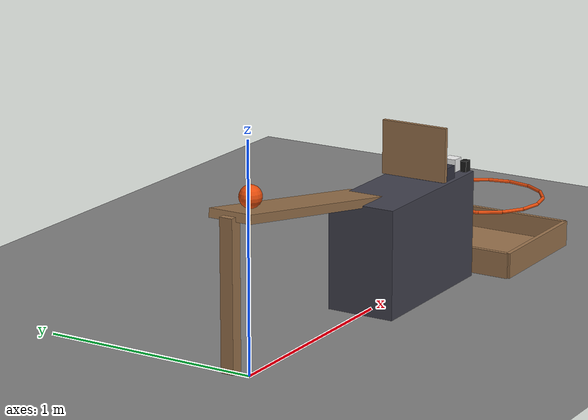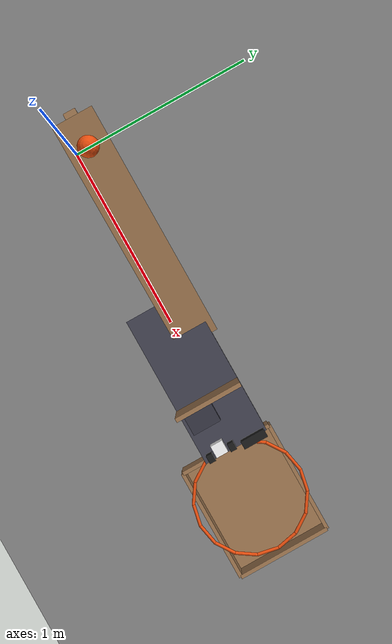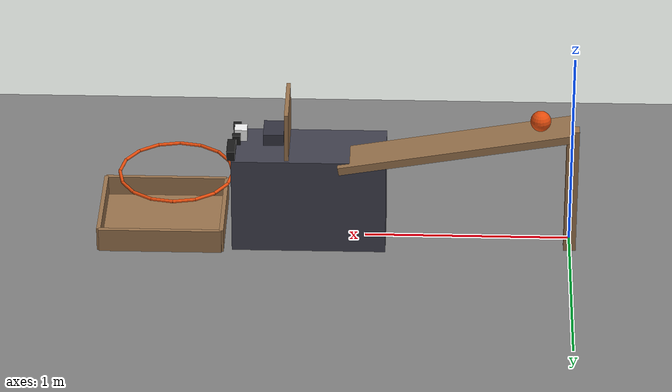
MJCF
<mujoco model="ramp_paddle_slider_block_hoop_box">
  <compiler angle="radian"/>
  <option timestep="0.002"/>
  <worldbody>
    <geom name="floor" type="plane" size="8 8 0.1" friction="0.8 0.005 0.002"/>
    <body name="ramp">
      <geom name="ramp_deck" type="box" pos="0.565 0.09 0.57" size="0.573781 0.1 0.02" euler="0 0.175177 0" rgba="0.6 0.45 0.3 1"/>
      <geom name="ramp_leg" type="box" pos="0 0.09 0.335" size="0.03 0.03 0.335" rgba="0.6 0.45 0.3 1"/>
    </body>
    <body name="ledge">
      <geom name="ledge" type="box" pos="1.275 0 0.25" size="0.375 0.16 0.25" friction="0.3 0.005 0.0001" rgba="0.25 0.25 0.3 1"/>
    </body>
    <body name="ball" pos="0.157935 0.09 0.713135">
      <freejoint/>
      <geom name="ball" type="sphere" pos="0 0 0" size="0.05" mass="0.4" condim="6" friction="0.8 0.005 0.001" rgba="0.9 0.3 0.05 1"/>
    </body>
    <body name="paddle" pos="1.38 0 0.76">
      <joint name="paddle_hinge" type="hinge" pos="0 0 0" axis="0 1 0"/>
      <geom name="paddle" type="box" pos="0 0 -0.125" size="0.01 0.16 0.125" mass="0.15" rgba="0.6 0.45 0.3 1"/>
    </body>
    <body name="slider" pos="1.45 -0.07 0.53">
      <freejoint/>
      <geom name="slider" type="box" pos="0 0 0" size="0.05 0.07 0.03" mass="0.15" friction="0.3 0.005 0.0001" rgba="0.2 0.2 0.25 1"/>
    </body>
    <body name="block" pos="1.61 -0.07 0.53">
      <freejoint/>
      <geom name="block" type="box" pos="0 0 0" size="0.03 0.03 0.03" mass="0.1" friction="0.3 0.005 0.0001" solref="0.01 1" rgba="0.95 0.95 0.95 1"/>
    </body>
    <body name="left peg">
      <geom name="left peg" type="box" pos="1.63 -0.015 0.525" size="0.02 0.015 0.025" rgba="0.1 0.1 0.1 1"/>
    </body>
    <body name="right peg">
      <geom name="right peg" type="box" pos="1.63 -0.125 0.525" size="0.02 0.015 0.025" rgba="0.1 0.1 0.1 1"/>
    </body>
    <body name="ball stop">
      <geom name="ball stop" type="box" pos="1.65 0.09 0.525" size="0.02 0.06 0.025" rgba="0.1 0.1 0.1 1"/>
    </body>
    <body name="hoop">
      <geom name="hoop_00" type="capsule" size="0.008" fromto="2.208 -0.07 0.3 2.18684 0.036386 0.3" rgba="0.9 0.3 0.05 1"/>
      <geom name="hoop_01" type="capsule" size="0.008" fromto="2.18684 0.036386 0.3 2.12658 0.126576 0.3" rgba="0.9 0.3 0.05 1"/>
      <geom name="hoop_02" type="capsule" size="0.008" fromto="2.12658 0.126576 0.3 2.03639 0.186839 0.3" rgba="0.9 0.3 0.05 1"/>
      <geom name="hoop_03" type="capsule" size="0.008" fromto="2.03639 0.186839 0.3 1.93 0.208 0.3" rgba="0.9 0.3 0.05 1"/>
      <geom name="hoop_04" type="capsule" size="0.008" fromto="1.93 0.208 0.3 1.82361 0.186839 0.3" rgba="0.9 0.3 0.05 1"/>
      <geom name="hoop_05" type="capsule" size="0.008" fromto="1.82361 0.186839 0.3 1.73342 0.126576 0.3" rgba="0.9 0.3 0.05 1"/>
      <geom name="hoop_06" type="capsule" size="0.008" fromto="1.73342 0.126576 0.3 1.67316 0.036386 0.3" rgba="0.9 0.3 0.05 1"/>
      <geom name="hoop_07" type="capsule" size="0.008" fromto="1.67316 0.036386 0.3 1.652 -0.07 0.3" rgba="0.9 0.3 0.05 1"/>
      <geom name="hoop_08" type="capsule" size="0.008" fromto="1.652 -0.07 0.3 1.67316 -0.176386 0.3" rgba="0.9 0.3 0.05 1"/>
      <geom name="hoop_09" type="capsule" size="0.008" fromto="1.67316 -0.176386 0.3 1.73342 -0.266576 0.3" rgba="0.9 0.3 0.05 1"/>
      <geom name="hoop_10" type="capsule" size="0.008" fromto="1.73342 -0.266576 0.3 1.82361 -0.326839 0.3" rgba="0.9 0.3 0.05 1"/>
      <geom name="hoop_11" type="capsule" size="0.008" fromto="1.82361 -0.326839 0.3 1.93 -0.348 0.3" rgba="0.9 0.3 0.05 1"/>
      <geom name="hoop_12" type="capsule" size="0.008" fromto="1.93 -0.348 0.3 2.03639 -0.326839 0.3" rgba="0.9 0.3 0.05 1"/>
      <geom name="hoop_13" type="capsule" size="0.008" fromto="2.03639 -0.326839 0.3 2.12658 -0.266576 0.3" rgba="0.9 0.3 0.05 1"/>
      <geom name="hoop_14" type="capsule" size="0.008" fromto="2.12658 -0.266576 0.3 2.18684 -0.176386 0.3" rgba="0.9 0.3 0.05 1"/>
      <geom name="hoop_15" type="capsule" size="0.008" fromto="2.18684 -0.176386 0.3 2.208 -0.07 0.3" rgba="0.9 0.3 0.05 1"/>
    </body>
    <body name="box">
      <geom name="box_base" type="box" pos="2 -0.07 0.01" size="0.3 0.25 0.01" friction="0.9 0.005 0.0001" solref="0.01 1" rgba="0.6 0.45 0.3 1"/>
      <geom name="box_near_wall" type="box" pos="1.7 -0.07 0.06" size="0.01 0.25 0.06" friction="0.9 0.005 0.0001" solref="0.01 1" rgba="0.6 0.45 0.3 1"/>
      <geom name="box_far_wall" type="box" pos="2.3 -0.07 0.06" size="0.01 0.25 0.06" friction="0.9 0.005 0.0001" solref="0.01 1" rgba="0.6 0.45 0.3 1"/>
      <geom name="box_left_wall" type="box" pos="2 0.18 0.06" size="0.3 0.01 0.06" friction="0.9 0.005 0.0001" solref="0.01 1" rgba="0.6 0.45 0.3 1"/>
      <geom name="box_right_wall" type="box" pos="2 -0.32 0.06" size="0.3 0.01 0.06" friction="0.9 0.005 0.0001" solref="0.01 1" rgba="0.6 0.45 0.3 1"/>
    </body>
  </worldbody>
  <keyframe>
    <key name="start" qpos="0.157935 0.09 0.713135 1 0 0 0 0 1.45 -0.07 0.53 1 0 0 0 1.61 -0.07 0.53 1 0 0 0" qvel="0 0 0 0 0 0 0 0 0 0 0 0 0 0 0 0 0 0 0"/>
  </keyframe>
</mujoco>
